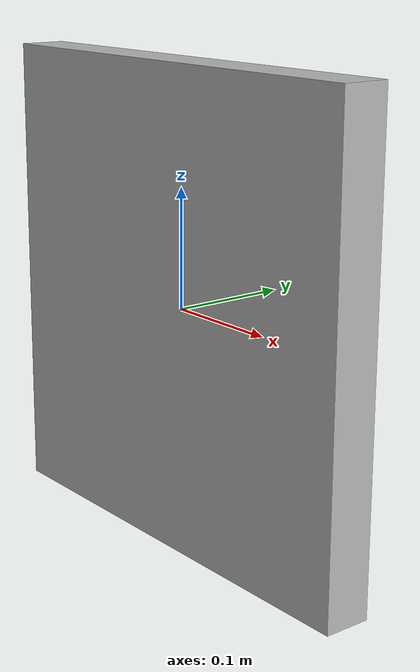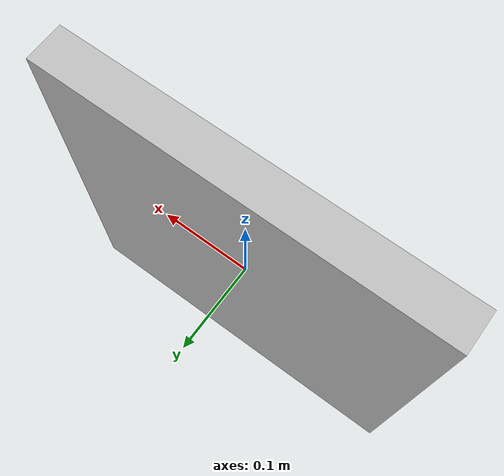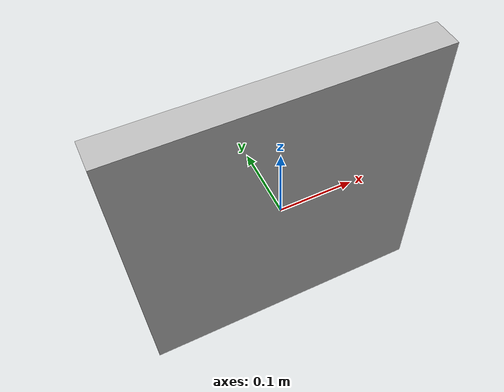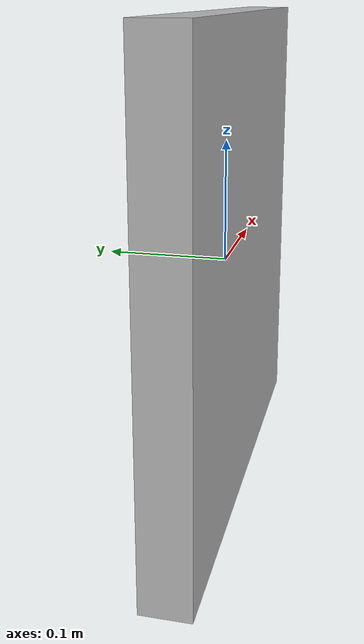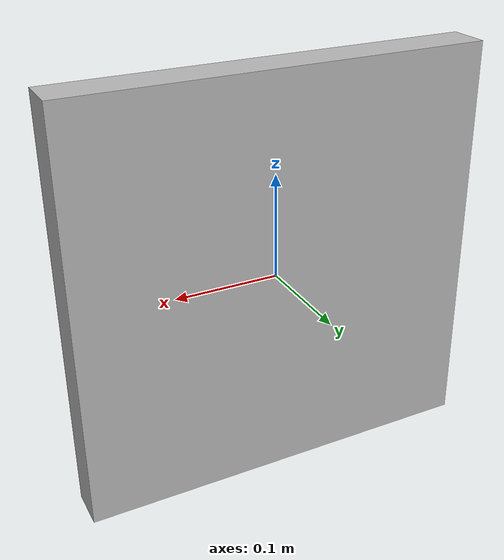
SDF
<?xml version='1.0'?>
<sdf version="1.4">
<model name="box_model">
  <pose>0 0 0 0 0 0</pose>
  <static>false</static>
    <link name="box">
      <inertial>
        <mass>1.0</mass>
	<inertia> <!-- note: inertias are set unrealistically to help debug forces/accelerations -->
          <!-- http://gazebosim.org/tutorials?tut=inertia&cat=build_robot -->
          <ixx>1</ixx>       <!-- for a box: ixx = 0.083 * mass * (y*y + z*z) -->
          <ixy>0.0</ixy>         <!-- for a box: ixy = 0 -->
          <ixz>0.0</ixz>         <!-- for a box: ixz = 0 -->
          <iyy>1</iyy>       <!-- for a box: iyy = 0.083 * mass * (x*x + z*z) -->
          <iyz>0.0</iyz>         <!-- for a box: iyz = 0 -->
          <izz>1</izz>       <!-- for a box: izz = 0.083 * mass * (x*x + y*y) -->
        </inertia>
      </inertial>
      <collision name="collision">
        <geometry>
          <box>
            <size>.4 .04 .4</size>
          </box>
        </geometry>
        <surface>
          <friction>
            <ode>
              <mu>.1</mu>
              <mu2>.1</mu2>
            </ode>
          </friction>
        </surface>
      </collision>
      <visual name="visual">
        <geometry>
          <box>
            <size>.4 .04 .4</size>
          </box>
        </geometry>
      </visual>
    </link>
  </model>
</sdf>
